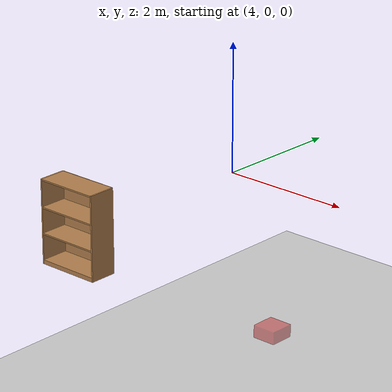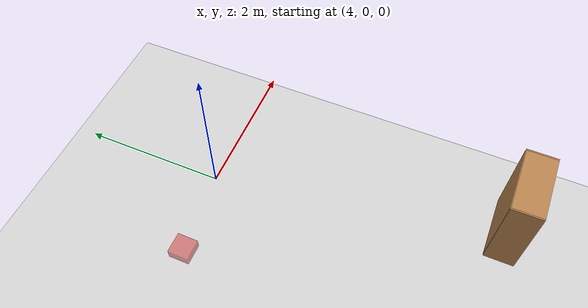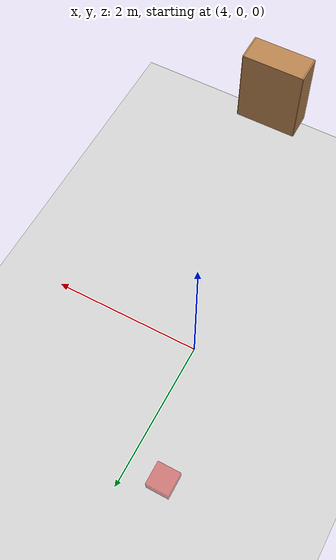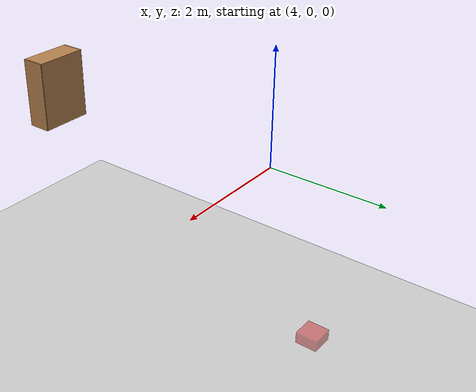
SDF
<sdf version="1.6">
 <world name="default">
  <model name="ground_plane">
   <pose>0 0 -3 0 0 0</pose>
   <static>1</static>
   <link name="link">
    <collision name="collision">
     <geometry><plane><normal>0 0 1</normal><size>100 100</size></plane></geometry>
     <surface><friction><ode><mu>100</mu><mu2>50</mu2></ode></friction></surface>
    </collision>
    <visual name="visual">
     <cast_shadows>0</cast_shadows>
     <geometry><plane><normal>0 0 1</normal><size>100 100</size></plane></geometry>
     <material>
      <script><uri>file://media/materials/scripts/gazebo.material</uri><name>Gazebo/Grey</name></script>
     </material>
    </visual>
   </link>
  </model>
  <model name="bookshelf">
   <pose>4.78412 -3.73836 0 0 -0 0</pose>
   <static>1</static>
   <link name="link">
    <inertial><mass>1</mass></inertial>
    <collision name="back">
     <pose>0 0.005 0.6 0 -0 0</pose>
     <geometry><box><size>0.9 0.01 1.2</size></box></geometry>
    </collision>
    <visual name="visual1">
     <pose>0 0.005 0.6 0 -0 0</pose>
     <geometry><box><size>0.9 0.01 1.2</size></box></geometry>
     <material>
      <script><uri>file://media/materials/scripts/gazebo.material</uri><name>Gazebo/Wood</name></script>
     </material>
    </visual>
    <collision name="left_side">
     <pose>0.45 -0.195 0.6 0 -0 0</pose>
     <geometry><box><size>0.02 0.4 1.2</size></box></geometry>
    </collision>
    <visual name="visual2">
     <pose>0.45 -0.195 0.6 0 -0 0</pose>
     <geometry><box><size>0.02 0.4 1.2</size></box></geometry>
     <material>
      <script><uri>file://media/materials/scripts/gazebo.material</uri><name>Gazebo/Wood</name></script>
     </material>
    </visual>
    <collision name="right_side">
     <pose>-0.45 -0.195 0.6 0 -0 0</pose>
     <geometry><box><size>0.02 0.4 1.2</size></box></geometry>
    </collision>
    <visual name="visual3">
     <pose>-0.45 -0.195 0.6 0 -0 0</pose>
     <geometry><box><size>0.02 0.4 1.2</size></box></geometry>
     <material>
      <script><uri>file://media/materials/scripts/gazebo.material</uri><name>Gazebo/Wood</name></script>
     </material>
    </visual>
    <collision name="bottom">
     <pose>0 -0.195 0.03 0 -0 0</pose>
     <geometry><box><size>0.88 0.4 0.06</size></box></geometry>
    </collision>
    <visual name="visual4">
     <pose>0 -0.195 0.03 0 -0 0</pose>
     <geometry><box><size>0.88 0.4 0.06</size></box></geometry>
     <material>
      <script><uri>file://media/materials/scripts/gazebo.material</uri><name>Gazebo/Wood</name></script>
     </material>
    </visual>
    <collision name="top">
     <pose>0 -0.195 1.19 0 -0 0</pose>
     <geometry><box><size>0.88 0.4 0.02</size></box></geometry>
    </collision>
    <visual name="visual5">
     <pose>0 -0.195 1.19 0 -0 0</pose>
     <geometry><box><size>0.88 0.4 0.02</size></box></geometry>
     <material>
      <script><uri>file://media/materials/scripts/gazebo.material</uri><name>Gazebo/Wood</name></script>
     </material>
    </visual>
    <collision name="low_shelf">
     <pose>0 -0.195 0.43 0 -0 0</pose>
     <geometry><box><size>0.88 0.4 0.02</size></box></geometry>
    </collision>
    <visual name="visual6">
     <pose>0 -0.195 0.43 0 -0 0</pose>
     <geometry><box><size>0.88 0.4 0.02</size></box></geometry>
     <material>
      <script><uri>file://media/materials/scripts/gazebo.material</uri><name>Gazebo/Wood</name></script>
     </material>
    </visual>
    <collision name="high_shelf">
     <pose>0 -0.195 0.8 0 -0 0</pose>
     <geometry><box><size>0.88 0.4 0.02</size></box></geometry>
    </collision>
    <visual name="visual7">
     <pose>0 -0.195 0.8 0 -0 0</pose>
     <geometry><box><size>0.88 0.4 0.02</size></box></geometry>
     <material>
      <script><uri>file://media/materials/scripts/gazebo.material</uri><name>Gazebo/Wood</name></script>
     </material>
    </visual>
   </link>
  </model>
  <model name="goal_box">
   <pose>3.96847 0.977565 -2.85 0 -0 0</pose>
   <link name="link">
    <inertial>
     <mass>2</mass>
     <inertia>
      <ixx>0.0416667</ixx>
      <ixy>0</ixy>
      <ixz>0</ixz>
      <iyy>0.0566667</iyy>
      <iyz>0</iyz>
      <izz>0.0683333</izz>
     </inertia>
    </inertial>
    <visual name="visual">
     <pose>0 0 -0.15 0 -0 0</pose>
     <geometry><box><size>0.4 0.4 0.4</size></box></geometry>
     <material>
      <script><uri>file://media/materials/scripts/gazebo.material</uri><name>Gazebo/Red</name></script>
     </material>
     <transparency>0.5</transparency>
    </visual>
    <gravity>0</gravity>
   </link>
  </model>
 </world>
</sdf>
